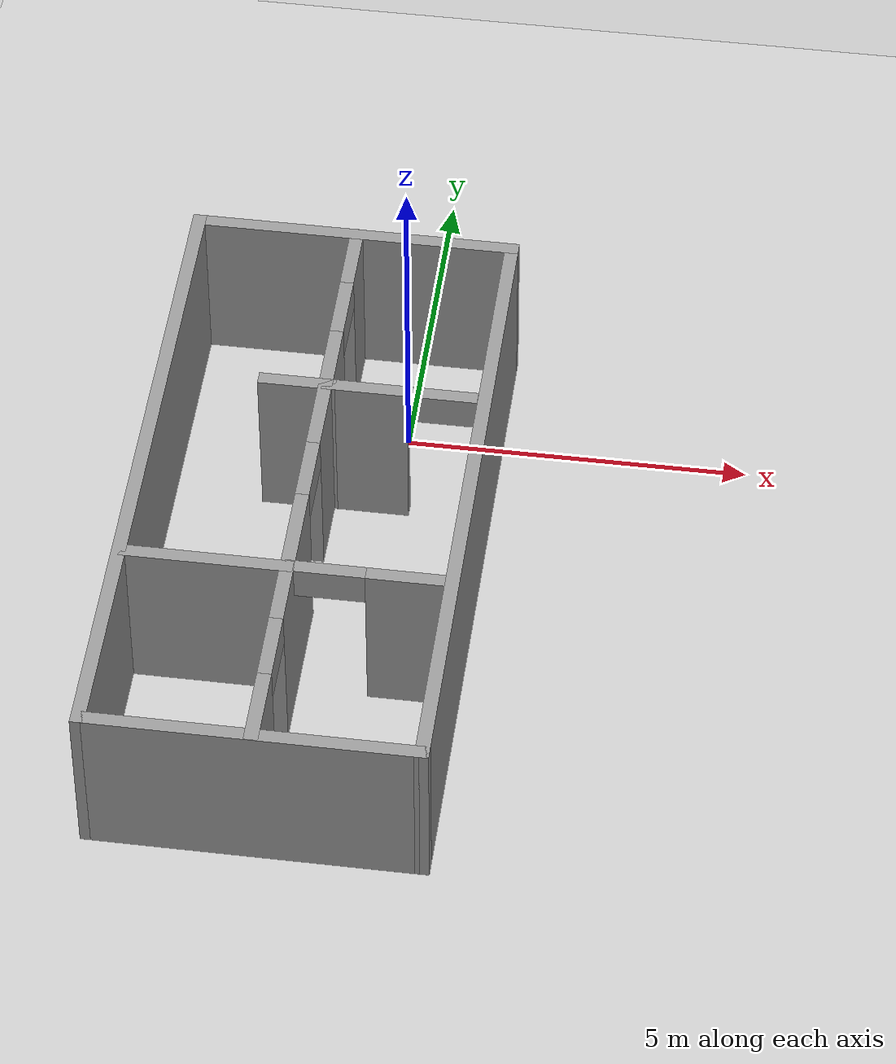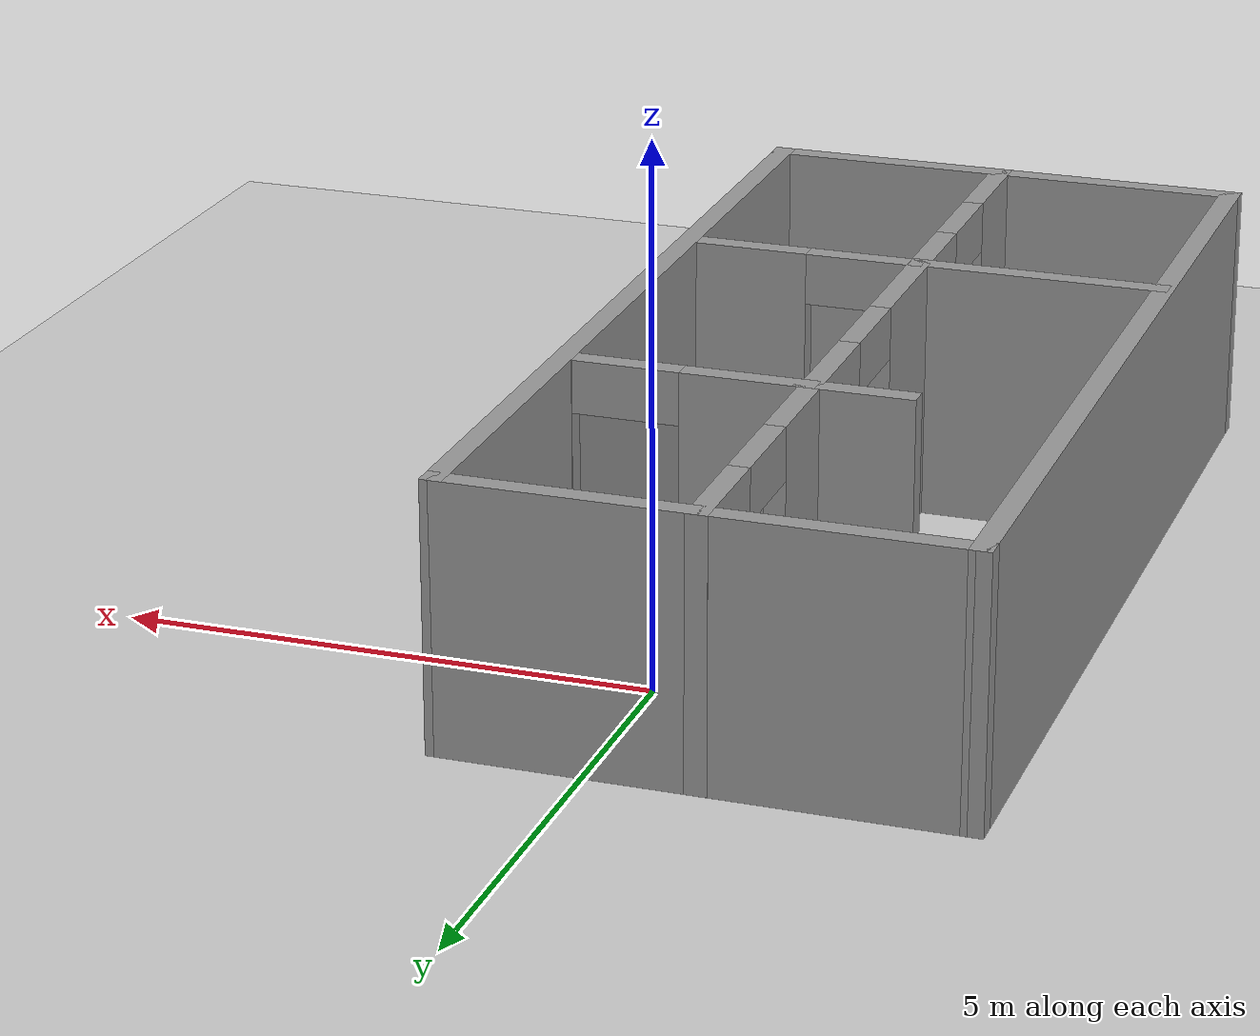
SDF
<sdf version="1.6">
 <world name="default">
  <light name="sun" type="directional">
   <pose>0 0 10 0 -0 0</pose>
   <diffuse>0.8 0.8 0.8 1</diffuse>
   <specular>0.2 0.2 0.2 1</specular>
   <attenuation>
    <range>1000</range>
    <constant>0.9</constant>
    <linear>0.01</linear>
    <quadratic>0.001</quadratic>
   </attenuation>
   <direction>-0.5 0.1 -0.9</direction>
  </light>
  <model name="ground_plane">
   <static>1</static>
   <link name="link">
    <collision name="collision">
     <geometry><plane><normal>0 0 1</normal><size>100 100</size></plane></geometry>
     <surface><friction><ode><mu>100</mu><mu2>50</mu2></ode></friction></surface>
    </collision>
    <visual name="visual">
     <cast_shadows>0</cast_shadows>
     <geometry><plane><normal>0 0 1</normal><size>100 100</size></plane></geometry>
     <material>
      <script><uri>file://media/materials/scripts/gazebo.material</uri><name>Gazebo/Grey</name></script>
     </material>
    </visual>
   </link>
  </model>
  <model name="scene1">
   <pose>-0.955851 -2e-06 0 0 0 -1.57079</pose>
   <link name="Wall_11">
    <pose>1.35278 1.12391 0 0 0 -1.5708</pose>
    <visual name="Wall_11_Visual_0">
     <pose>-1.12127 0 1.25 0 -0 0</pose>
     <geometry><box><size>0.193141 0.2 2.5</size></box></geometry>
     <material>
      <script><uri>file://media/materials/scripts/gazebo.material</uri><name>Gazebo/Grey</name></script>
     </material>
    </visual>
    <collision name="Wall_11_Collision_0">
     <geometry><box><size>0.193141 0.2 2.5</size></box></geometry>
     <pose>-1.12127 0 1.25 0 -0 0</pose>
    </collision>
    <visual name="Wall_11_Visual_1">
     <pose>0.596571 0 1.25 0 -0 0</pose>
     <geometry><box><size>1.24255 0.2 2.5</size></box></geometry>
     <material>
      <script><uri>file://media/materials/scripts/gazebo.material</uri><name>Gazebo/Grey</name></script>
     </material>
    </visual>
    <collision name="Wall_11_Collision_1">
     <geometry><box><size>1.24255 0.2 2.5</size></box></geometry>
     <pose>0.596571 0 1.25 0 -0 0</pose>
    </collision>
    <visual name="Wall_11_Visual_2">
     <pose>-0.524702 0 2.25 0 -0 0</pose>
     <geometry><box><size>1 0.2 0.5</size></box></geometry>
     <material>
      <script><uri>file://media/materials/scripts/gazebo.material</uri><name>Gazebo/Grey</name></script>
     </material>
    </visual>
    <collision name="Wall_11_Collision_2">
     <geometry><box><size>1 0.2 0.5</size></box></geometry>
     <pose>-0.524702 0 2.25 0 -0 0</pose>
    </collision>
    <velocity_decay><linear>0</linear><angular>0</angular></velocity_decay>
   </link>
   <link name="Wall_13">
    <pose>4.85079 1.1011 0 0 0 -1.5708</pose>
    <visual name="Wall_13_Visual_0">
     <pose>-0.566153 0 1.25 0 -0 0</pose>
     <geometry><box><size>1.22734 0.2 2.5</size></box></geometry>
     <material>
      <script><uri>file://media/materials/scripts/gazebo.material</uri><name>Gazebo/Grey</name></script>
     </material>
    </visual>
    <collision name="Wall_13_Collision_0">
     <geometry><box><size>1.22734 0.2 2.5</size></box></geometry>
     <pose>-0.566153 0 1.25 0 -0 0</pose>
    </collision>
    <visual name="Wall_13_Visual_1">
     <pose>1.11367 0 1.25 0 -0 0</pose>
     <geometry><box><size>0.132306 0.2 2.5</size></box></geometry>
     <material>
      <script><uri>file://media/materials/scripts/gazebo.material</uri><name>Gazebo/Grey</name></script>
     </material>
    </visual>
    <collision name="Wall_13_Collision_1">
     <geometry><box><size>0.132306 0.2 2.5</size></box></geometry>
     <pose>1.11367 0 1.25 0 -0 0</pose>
    </collision>
    <visual name="Wall_13_Visual_2">
     <pose>0.547515 0 2.25 0 -0 0</pose>
     <geometry><box><size>1 0.2 0.5</size></box></geometry>
     <material>
      <script><uri>file://media/materials/scripts/gazebo.material</uri><name>Gazebo/Grey</name></script>
     </material>
    </visual>
    <collision name="Wall_13_Collision_2">
     <geometry><box><size>1 0.2 0.5</size></box></geometry>
     <pose>0.547515 0 2.25 0 -0 0</pose>
    </collision>
    <velocity_decay><linear>0</linear><angular>0</angular></velocity_decay>
   </link>
   <link name="Wall_15">
    <collision name="Wall_15_Collision">
     <geometry><box><size>2.48131 0.2 2.5</size></box></geometry>
     <pose>0 0 1.25 0 -0 0</pose>
    </collision>
    <visual name="Wall_15_Visual">
     <pose>0 0 1.25 0 -0 0</pose>
     <geometry><box><size>2.48131 0.2 2.5</size></box></geometry>
     <material>
      <script><uri>file://media/materials/scripts/gazebo.material</uri><name>Gazebo/Grey</name></script>
     </material>
    </visual>
    <velocity_decay><linear>0</linear><angular>0</angular></velocity_decay>
    <pose>4.866 -1.19542 0 0 0 -1.5708</pose>
   </link>
   <link name="Wall_17">
    <collision name="Wall_17_Collision">
     <geometry><box><size>1.11252 0.2 2.5</size></box></geometry>
     <pose>0 0 1.25 0 -0 0</pose>
    </collision>
    <visual name="Wall_17_Visual">
     <pose>0 0 1.25 0 -0 0</pose>
     <geometry><box><size>1.11252 0.2 2.5</size></box></geometry>
     <material>
      <script><uri>file://media/materials/scripts/gazebo.material</uri><name>Gazebo/Grey</name></script>
     </material>
    </visual>
    <velocity_decay><linear>0</linear><angular>0</angular></velocity_decay>
    <pose>1.35278 -0.450191 0 0 0 -1.5708</pose>
   </link>
   <link name="Wall_2">
    <collision name="Wall_2_Collision">
     <geometry><box><size>9.8344 0.2 2.5</size></box></geometry>
     <pose>0 0 1.25 0 -0 0</pose>
    </collision>
    <visual name="Wall_2_Visual">
     <pose>0 0 1.25 0 -0 0</pose>
     <geometry><box><size>9.8344 0.2 2.5</size></box></geometry>
     <material>
      <script><uri>file://media/materials/scripts/gazebo.material</uri><name>Gazebo/Grey</name></script>
     </material>
    </visual>
    <velocity_decay><linear>0</linear><angular>0</angular></velocity_decay>
    <pose>3.08411 -2.38753 0 0 -0 0</pose>
   </link>
   <link name="Wall_3">
    <collision name="Wall_3_Collision">
     <geometry><box><size>4.84069 0.2 2.5</size></box></geometry>
     <pose>0 0 1.25 0 -0 0</pose>
    </collision>
    <visual name="Wall_3_Visual">
     <pose>0 0 1.25 0 -0 0</pose>
     <geometry><box><size>4.84069 0.2 2.5</size></box></geometry>
     <material>
      <script><uri>file://media/materials/scripts/gazebo.material</uri><name>Gazebo/Grey</name></script>
     </material>
    </visual>
    <velocity_decay><linear>0</linear><angular>0</angular></velocity_decay>
    <pose>7.90203 -0.067224 0 0 -0 1.57048</pose>
   </link>
   <link name="Wall_4">
    <collision name="Wall_4_Collision">
     <geometry><box><size>9.83495 0.2 2.5</size></box></geometry>
     <pose>0 0 1.25 0 -0 0</pose>
    </collision>
    <visual name="Wall_4_Visual">
     <pose>0 0 1.25 0 -0 0</pose>
     <geometry><box><size>9.83495 0.2 2.5</size></box></geometry>
     <material>
      <script><uri>file://media/materials/scripts/gazebo.material</uri><name>Gazebo/Grey</name></script>
     </material>
    </visual>
    <velocity_decay><linear>0</linear><angular>0</angular></velocity_decay>
    <pose>3.08528 2.25309 0 0 -0 3.14159</pose>
   </link>
   <link name="Wall_5">
    <collision name="Wall_5_Collision">
     <geometry><box><size>4.84085 0.2 2.5</size></box></geometry>
     <pose>0 0 1.25 0 -0 0</pose>
    </collision>
    <visual name="Wall_5_Visual">
     <pose>0 0 1.25 0 -0 0</pose>
     <geometry><box><size>4.84085 0.2 2.5</size></box></geometry>
     <material>
      <script><uri>file://media/materials/scripts/gazebo.material</uri><name>Gazebo/Grey</name></script>
     </material>
    </visual>
    <velocity_decay><linear>0</linear><angular>0</angular></velocity_decay>
    <pose>-1.73265 -0.067224 0 0 0 -1.57099</pose>
   </link>
   <link name="Wall_9">
    <pose>3.07897 -0.039554 0 0 -0 0</pose>
    <visual name="Wall_9_Visual_0">
     <pose>-4.35313 0 1.25 0 -0 0</pose>
     <geometry><box><size>1.12088 0.2 2.5</size></box></geometry>
     <material>
      <script><uri>file://media/materials/scripts/gazebo.material</uri><name>Gazebo/Grey</name></script>
     </material>
    </visual>
    <collision name="Wall_9_Collision_0">
     <geometry><box><size>1.12088 0.2 2.5</size></box></geometry>
     <pose>-4.35313 0 1.25 0 -0 0</pose>
    </collision>
    <visual name="Wall_9_Visual_1">
     <pose>-1.68057 0 1.25 0 -0 0</pose>
     <geometry><box><size>2.22425 0.2 2.5</size></box></geometry>
     <material>
      <script><uri>file://media/materials/scripts/gazebo.material</uri><name>Gazebo/Grey</name></script>
     </material>
    </visual>
    <collision name="Wall_9_Collision_1">
     <geometry><box><size>2.22425 0.2 2.5</size></box></geometry>
     <pose>-1.68057 0 1.25 0 -0 0</pose>
    </collision>
    <visual name="Wall_9_Visual_2">
     <pose>1.58931 0 1.25 0 -0 0</pose>
     <geometry><box><size>2.31551 0.2 2.5</size></box></geometry>
     <material>
      <script><uri>file://media/materials/scripts/gazebo.material</uri><name>Gazebo/Grey</name></script>
     </material>
    </visual>
    <collision name="Wall_9_Collision_2">
     <geometry><box><size>2.31551 0.2 2.5</size></box></geometry>
     <pose>1.58931 0 1.25 0 -0 0</pose>
    </collision>
    <visual name="Wall_9_Visual_3">
     <pose>4.33032 0 1.25 0 -0 0</pose>
     <geometry><box><size>1.1665 0.2 2.5</size></box></geometry>
     <material>
      <script><uri>file://media/materials/scripts/gazebo.material</uri><name>Gazebo/Grey</name></script>
     </material>
    </visual>
    <collision name="Wall_9_Collision_3">
     <geometry><box><size>1.1665 0.2 2.5</size></box></geometry>
     <pose>4.33032 0 1.25 0 -0 0</pose>
    </collision>
    <visual name="Wall_9_Visual_4">
     <pose>-3.29269 0 2.25 0 -0 0</pose>
     <geometry><box><size>1 0.2 0.5</size></box></geometry>
     <material>
      <script><uri>file://media/materials/scripts/gazebo.material</uri><name>Gazebo/Grey</name></script>
     </material>
    </visual>
    <collision name="Wall_9_Collision_4">
     <geometry><box><size>1 0.2 0.5</size></box></geometry>
     <pose>-3.29269 0 2.25 0 -0 0</pose>
    </collision>
    <visual name="Wall_9_Visual_5">
     <pose>-0.068439 0 2.25 0 -0 0</pose>
     <geometry><box><size>1 0.2 0.5</size></box></geometry>
     <material>
      <script><uri>file://media/materials/scripts/gazebo.material</uri><name>Gazebo/Grey</name></script>
     </material>
    </visual>
    <collision name="Wall_9_Collision_5">
     <geometry><box><size>1 0.2 0.5</size></box></geometry>
     <pose>-0.068439 0 2.25 0 -0 0</pose>
    </collision>
    <visual name="Wall_9_Visual_6">
     <pose>3.24707 0 2.25 0 -0 0</pose>
     <geometry><box><size>1 0.2 0.5</size></box></geometry>
     <material>
      <script><uri>file://media/materials/scripts/gazebo.material</uri><name>Gazebo/Grey</name></script>
     </material>
    </visual>
    <collision name="Wall_9_Collision_6">
     <geometry><box><size>1 0.2 0.5</size></box></geometry>
     <pose>3.24707 0 2.25 0 -0 0</pose>
    </collision>
    <velocity_decay><linear>0</linear><angular>0</angular></velocity_decay>
   </link>
   <static>1</static>
  </model>
  <physics name="default_physics" default="0" type="ode">
   <max_step_size>0.001</max_step_size>
   <real_time_factor>1</real_time_factor>
   <real_time_update_rate>1000</real_time_update_rate>
  </physics>
  <scene><ambient>0.4 0.4 0.4 1</ambient><background>0.7 0.7 0.7 1</background><shadows>1</shadows></scene>
  <spherical_coordinates>
   <surface_model>EARTH_WGS84</surface_model>
   <latitude_deg>0</latitude_deg>
   <longitude_deg>0</longitude_deg>
   <elevation>0</elevation>
   <heading_deg>0</heading_deg>
  </spherical_coordinates>
  <gravity>0 0 -9.8</gravity>
  <magnetic_field>6e-06 2.3e-05 -4.2e-05</magnetic_field>
  <atmosphere type="adiabatic"/>
 </world>
</sdf>
